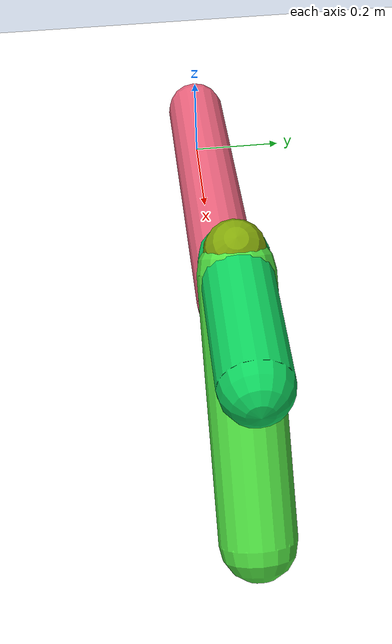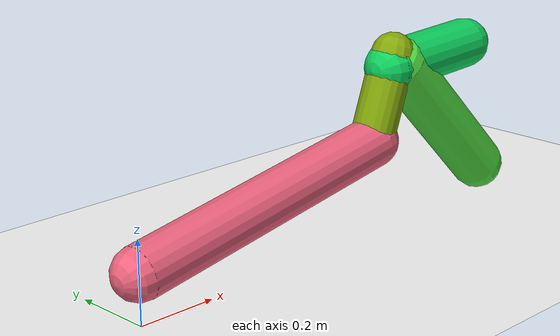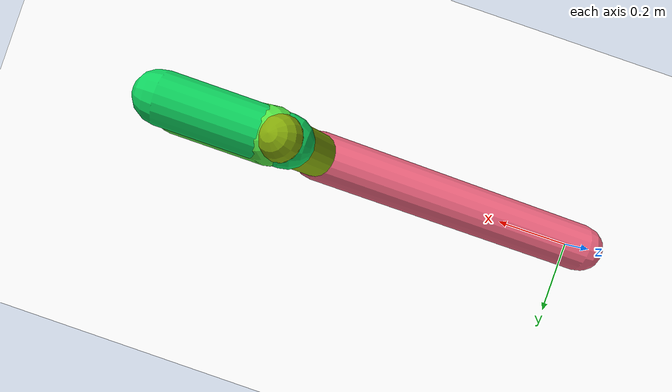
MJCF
<mujoco model="morphology">
  <option timestep="0.01"/>
  <default>
    <default class="/"/>
    <default class="0/"/>
    <default class="0/1/"/>
    <default class="0/1/2/"/>
    <default class="0/1/2/3/"/>
  </default>
  <asset>
    <texture name="texplane" type="2d" builtin="checker" rgb1="0.10000000000000001 0.20000000000000001 0.29999999999999999" rgb2="0.20000000000000001 0.29999999999999999 0.40000000000000002" width="300" height="300"/>
    <material name="MatPlane" class="/" texture="texplane" texrepeat="20 20" specular="1" shininess="1" reflectance="0.5"/>
  </asset>
  <worldbody>
    <light name="//unnamed_light_0" class="/" directional="true" pos="0 0 1.5" dir="0 0 -1.3" cutoff="100" exponent="1" diffuse="1 1 1" specular="0.10000000000000001 0.10000000000000001 0.10000000000000001"/>
    <geom name="ground" class="/" type="plane" size="15 15 0.5" material="MatPlane" rgba="1 1 1 1"/>
    <site name="body" class="/" size="9.9999999999999995e-07 9.9999999999999995e-07 9.9999999999999995e-07" pos="0 0 0.12362926118075848"/>
    <body pos="0 0 0.12362926118075848" name="0/">
      <joint name="0/rootx/" class="/" type="slide" axis="1 0 0" limited="false" stiffness="0" armature="0" damping="0"/>
      <joint name="0/rootz/" class="/" type="slide" axis="0 0 1" limited="false" stiffness="0" armature="0" damping="0"/>
      <joint name="0/rooty/" class="/" type="hinge" axis="0 1 0" limited="false" stiffness="0" armature="0" damping="0"/>
      <geom name="0/geom" class="0/" type="capsule" contype="1" conaffinity="1" condim="3" size="0.062929618378413613" rgba="0.92214726328112229 0.38564423123264957 0.48977204483195336 1" friction="0.59999999999999998 0.10000000000000001 0.10000000000000001" fromto="0 0 0 0.73214695418804943 0 0.12681064701627165"/>
      <site name="0/end0" class="0/" size="0.0050000000000000001" pos="0.73214695418804943 0 0.12681064701627165"/>
      <site name="0/attach1" class="0/" size="9.9999999999999995e-07 9.9999999999999995e-07 9.9999999999999995e-07" pos="0.72326777001164766 0 0.12527273842572803"/>
      <body pos="0.72326777001164766 0 0.12527273842572803" name="0/1/">
        <joint name="0/1/joint/" class="0/" type="hinge" axis="0 1 0" limited="true" range="-56.77340046531566 56.77340046531566"/>
        <geom name="0/1/geom" class="0/1/" type="capsule" contype="1" conaffinity="1" condim="3" size="0.054940324518359736" rgba="0.51428047088903106 0.65628187804135185 0.036100688574303152 1" friction="0.59999999999999998 0.10000000000000001 0.10000000000000001" fromto="0 0 0 0.076650116618127373 0 0.20868933834194081"/>
        <site name="0/1/end1" class="0/1/" size="0.0050000000000000001" pos="0.076650116618127373 0 0.20868933834194081"/>
        <site name="0/1/attach2" class="0/1/" size="9.9999999999999995e-07 9.9999999999999995e-07 9.9999999999999995e-07" pos="0.065524530727948949 0 0.17839856697032"/>
        <body pos="0.065524530727948949 0 0.17839856697032" name="0/1/2/">
          <joint name="0/1/2/joint/" class="0/1/" type="hinge" axis="0 1 0" limited="true" range="-33.016811345580471 33.016811345580471"/>
          <geom name="0/1/2/geom" class="0/1/2/" type="capsule" contype="1" conaffinity="1" condim="3" size="0.063479504280235299" rgba="0.050594488915906566 0.81707002662923278 0.36520885931382718 1" friction="0.59999999999999998 0.10000000000000001 0.10000000000000001" fromto="0 0 0 0.28916910157593656 0 0.013886208802330935"/>
          <site name="0/1/2/end2" class="0/1/2/" size="0.0050000000000000001" pos="0.28916910157593656 0 0.013886208802330935"/>
          <site name="0/1/2/attach3" class="0/1/2/" size="9.9999999999999995e-07 9.9999999999999995e-07 9.9999999999999995e-07" pos="0.033919453025105559 0 0.0016288483264654135"/>
          <body pos="0.033919453025105559 0 0.0016288483264654135" name="0/1/2/3/">
            <joint name="0/1/2/3/joint/" class="0/1/2/" type="hinge" axis="0 1 0" limited="true" range="-50.274532658654834 50.274532658654834"/>
            <geom name="0/1/2/3/geom" class="0/1/2/3/" type="capsule" contype="1" conaffinity="1" condim="3" size="0.068717289576020912" rgba="0.31513753955885226 0.88394478298259138 0.25895618825828504 1" friction="0.59999999999999998 0.10000000000000001 0.10000000000000001" fromto="0 0 0 0.32749484797156048 0 -0.3289294155471848"/>
            <site name="0/1/2/3/end3" class="0/1/2/3/" size="0.0050000000000000001" pos="0.32749484797156048 0 -0.3289294155471848"/>
          </body>
        </body>
      </body>
      <camera name="0/side" class="0/" mode="trackcom" pos="0.40000000000000002 -4 0.20000000000000001" quat="0.70699999999999996 0.70699999999999996 0 0"/>
    </body>
  </worldbody>
  <actuator>
    <motor name="0/1/motor" class="0/1/" ctrllimited="true" ctrlrange="-1 1" gear="60" joint="0/1/joint/"/>
    <motor name="0/1/2/motor" class="0/1/2/" ctrllimited="true" ctrlrange="-1 1" gear="68" joint="0/1/2/joint/"/>
    <motor name="0/1/2/3/motor" class="0/1/2/3/" ctrllimited="true" ctrlrange="-1 1" gear="65" joint="0/1/2/3/joint/"/>
  </actuator>
  <sensor>
    <subtreelinvel name="velocity" body="0/"/>
  </sensor>
</mujoco>
